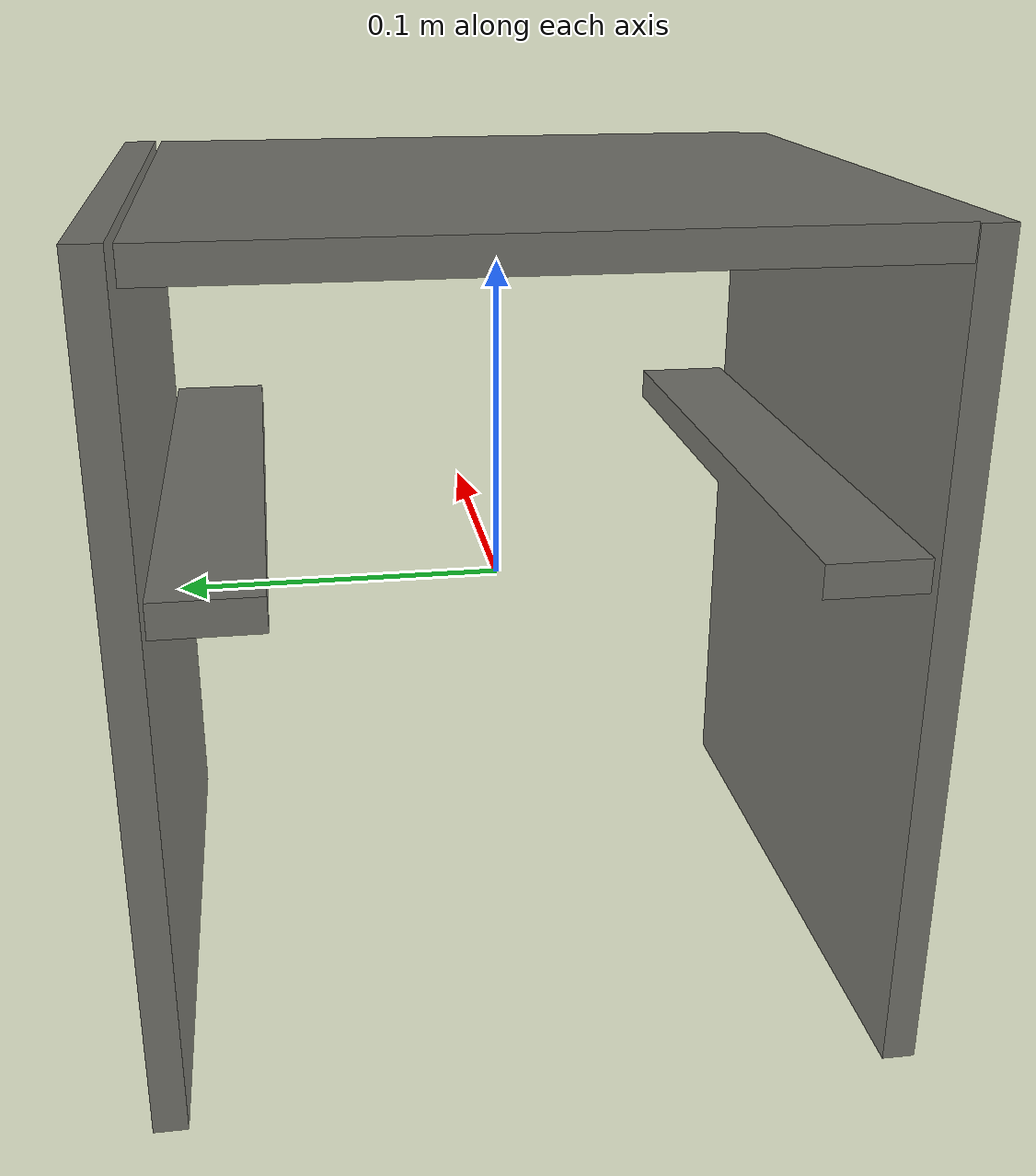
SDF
<?xml version="1.0"?>
<sdf version="1.9">
  <model name="sausage_tray_stand">
    <static>true</static>
    <link name="sausage_tray_stand_link">
      <inertial>
        <mass>4.000000</mass>
        <inertia>
          <ixx>0.004000000</ixx>
          <iyy>0.004000000</iyy>
          <izz>0.004000000</izz>
          <ixy>0</ixy>
          <ixz>0</ixz>
          <iyz>0</iyz>
        </inertia>
      </inertial>
      <visual name="sausage_tray_stand_visual">
        <geometry>
          <mesh>
            <uri>meshes/sausage_tray_stand.obj</uri>
          </mesh>
        </geometry>
        <material>
          <ambient>0.112500 0.112500 0.105000 1.000000</ambient>
          <diffuse>0.450000 0.450000 0.420000 1.000000</diffuse>
          <specular>0.120000 0.120000 0.120000 1.000000</specular>
        </material>
      </visual>
      <collision name="sausage_tray_stand_sausage_tray__stand_left_hook_001_collision">
        <pose>0.000005484 0.087209642 0.032929718 0 0 0</pose>
        <geometry>
          <box>
            <size>0.200000003 0.030000001 0.009999998</size>
          </box>
        </geometry>
        <surface>
          <friction>
            <ode>
              <mu>1.0</mu>
              <mu2>1.0</mu2>
            </ode>
          </friction>
        </surface>
      </collision>
      <collision name="sausage_tray_stand_sausage_tray__stand_left_wall_collision">
        <pose>0.000005484 0.108309686 0.000229716 0 0 0</pose>
        <geometry>
          <box>
            <size>0.200000003 0.010000005 0.250000000</size>
          </box>
        </geometry>
        <surface>
          <friction>
            <ode>
              <mu>1.0</mu>
              <mu2>1.0</mu2>
            </ode>
          </friction>
        </surface>
      </collision>
      <collision name="sausage_tray_stand_sausage_tray__stand_right_hook_collision">
        <pose>0.000005484 -0.086490333 0.032929718 0 0 0</pose>
        <geometry>
          <box>
            <size>0.200000003 0.030000001 0.009999998</size>
          </box>
        </geometry>
        <surface>
          <friction>
            <ode>
              <mu>1.0</mu>
              <mu2>1.0</mu2>
            </ode>
          </friction>
        </surface>
      </collision>
      <collision name="sausage_tray_stand_sausage_tray__stand_right_wall_collision">
        <pose>0.000005484 -0.108390331 -0.000270277 0 0 0</pose>
        <geometry>
          <box>
            <size>0.200000003 0.010000005 0.250000000</size>
          </box>
        </geometry>
        <surface>
          <friction>
            <ode>
              <mu>1.0</mu>
              <mu2>1.0</mu2>
            </ode>
          </friction>
        </surface>
      </collision>
      <collision name="sausage_tray_stand_sausage_tray__stand_top_collision">
        <pose>0.000005484 -0.000890344 0.120129734 0 0 0</pose>
        <geometry>
          <box>
            <size>0.200000003 0.204290524 0.009999998</size>
          </box>
        </geometry>
        <surface>
          <friction>
            <ode>
              <mu>1.0</mu>
              <mu2>1.0</mu2>
            </ode>
          </friction>
        </surface>
      </collision>
    </link>
  </model>
</sdf>
